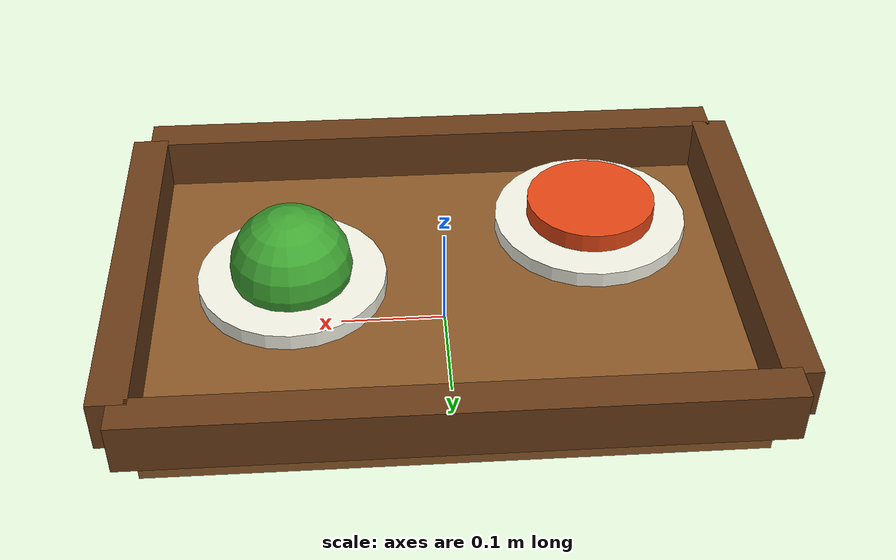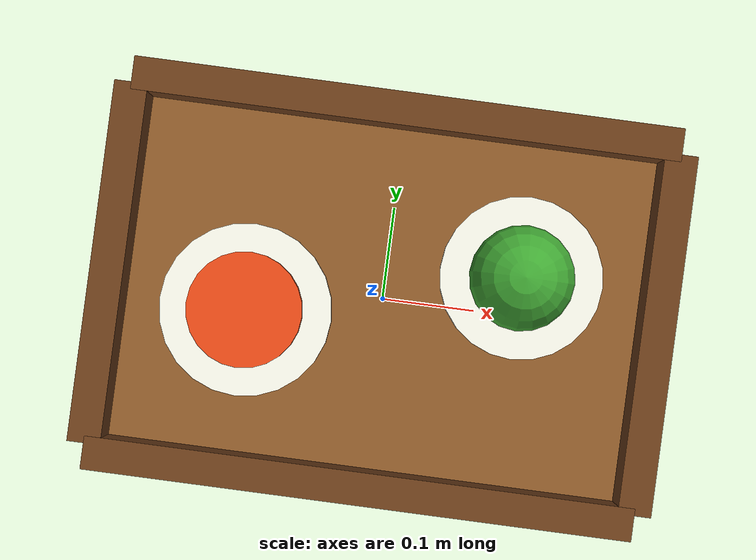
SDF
<?xml version="1.0" ?>
<sdf version="1.10">
  <model name="restaurant_delivery_tray">
    <static>false</static>
    <link name="tray_link">
      <inertial><mass>0.35</mass><inertia><ixx>0.01</ixx><iyy>0.01</iyy><izz>0.01</izz></inertia></inertial>
      <!-- Tray platform -->
      <visual name="tray_board"><pose>0 0 0.02 0 0 0</pose><geometry><box><size>0.55 0.38 0.04</size></box></geometry><material><ambient>0.55 0.35 0.16 1</ambient><diffuse>0.55 0.35 0.16 1</diffuse></material></visual>
      <collision name="tray_collision"><pose>0 0 0.02 0 0 0</pose><geometry><box><size>0.55 0.38 0.04</size></box></geometry></collision>
      <!-- Raised rim -->
      <visual name="rim_front"><pose>0 -0.20 0.065 0 0 0</pose><geometry><box><size>0.58 0.035 0.05</size></box></geometry><material><ambient>0.42 0.24 0.10 1</ambient><diffuse>0.42 0.24 0.10 1</diffuse></material></visual>
      <visual name="rim_back"><pose>0 0.20 0.065 0 0 0</pose><geometry><box><size>0.58 0.035 0.05</size></box></geometry><material><ambient>0.42 0.24 0.10 1</ambient><diffuse>0.42 0.24 0.10 1</diffuse></material></visual>
      <visual name="rim_left"><pose>-0.29 0 0.065 0 0 0</pose><geometry><box><size>0.035 0.38 0.05</size></box></geometry><material><ambient>0.42 0.24 0.10 1</ambient><diffuse>0.42 0.24 0.10 1</diffuse></material></visual>
      <visual name="rim_right"><pose>0.29 0 0.065 0 0 0</pose><geometry><box><size>0.035 0.38 0.05</size></box></geometry><material><ambient>0.42 0.24 0.10 1</ambient><diffuse>0.42 0.24 0.10 1</diffuse></material></visual>
      <!-- Food plates to show delivery function -->
      <visual name="plate_1"><pose>-0.14 -0.03 0.09 0 0 0</pose><geometry><cylinder><radius>0.09</radius><length>0.015</length></cylinder></geometry><material><ambient>0.95 0.95 0.90 1</ambient><diffuse>0.95 0.95 0.90 1</diffuse></material></visual>
      <visual name="food_1"><pose>-0.14 -0.03 0.108 0 0 0</pose><geometry><cylinder><radius>0.06</radius><length>0.018</length></cylinder></geometry><material><ambient>0.90 0.28 0.08 1</ambient><diffuse>0.90 0.28 0.08 1</diffuse></material></visual>
      <visual name="plate_2"><pose>0.14 0.04 0.09 0 0 0</pose><geometry><cylinder><radius>0.085</radius><length>0.015</length></cylinder></geometry><material><ambient>0.95 0.95 0.90 1</ambient><diffuse>0.95 0.95 0.90 1</diffuse></material></visual>
      <visual name="food_2"><pose>0.14 0.04 0.108 0 0 0</pose><geometry><sphere><radius>0.055</radius></sphere></geometry><material><ambient>0.25 0.65 0.20 1</ambient><diffuse>0.25 0.65 0.20 1</diffuse></material></visual>
      <surface><friction><ode><mu>1.5</mu><mu2>1.5</mu2></ode></friction></surface>
    </link>
  </model>
</sdf>
